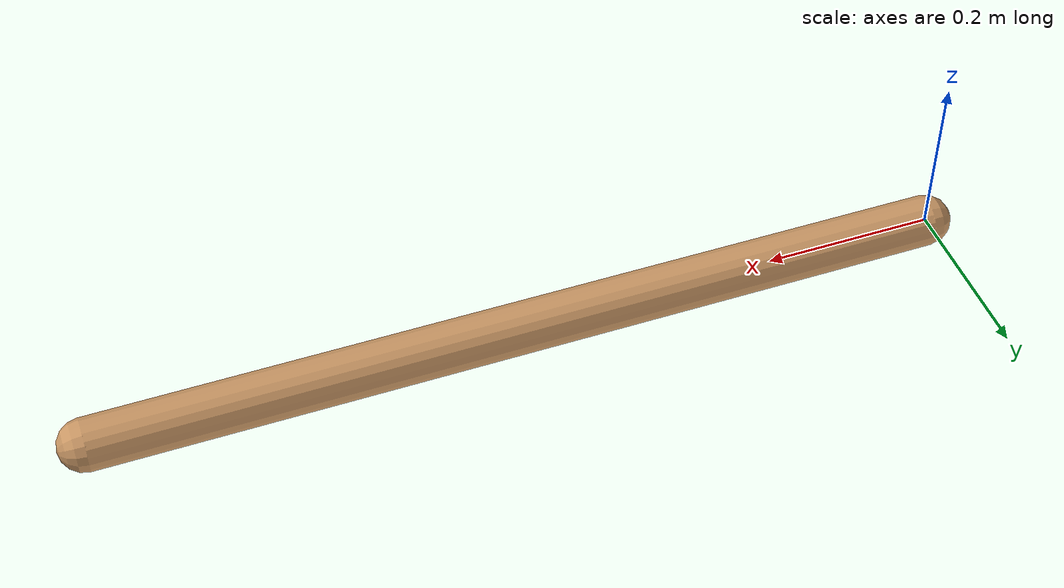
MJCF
<mujoco model="link">
  <compiler angle="radian" inertiafromgeom="true"/>
  <worldbody>
    <body name="link">
      <joint name="joint" type="hinge" axis="0 0 1" limited="false" armature="1" damping="3"/>
      <geom name="geom" type="capsule" fromto="0 0 0 1 0 0" size="0.03" density="340" friction="0.9"
            conaffinity="1" condim="1" contype="1" margin="0.001" rgba="0.8 0.6 0.4 1" solimp=".8 .8 .01" solref=".02 1"/>
      <!-- Attachment site for next link -->
      <site name="tip" pos="1 0 0" size="0.01" rgba="0 1 0 1"/>
    </body>
  </worldbody>
</mujoco>
